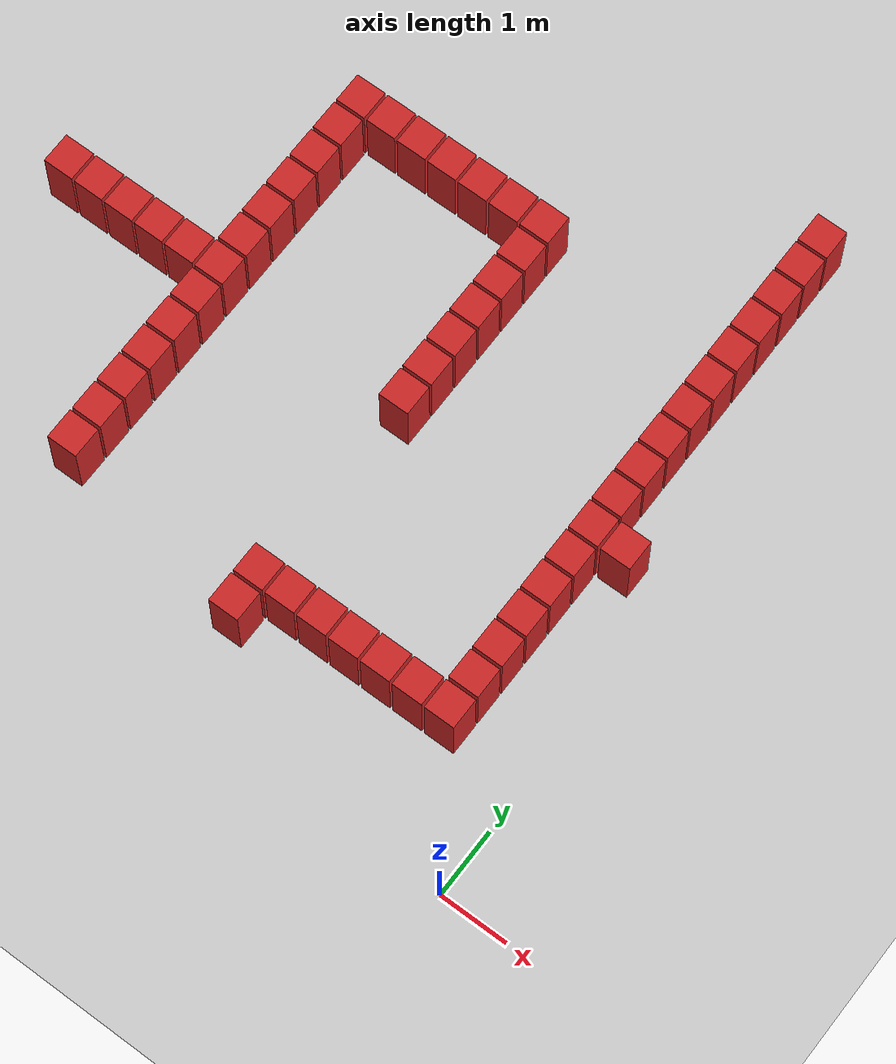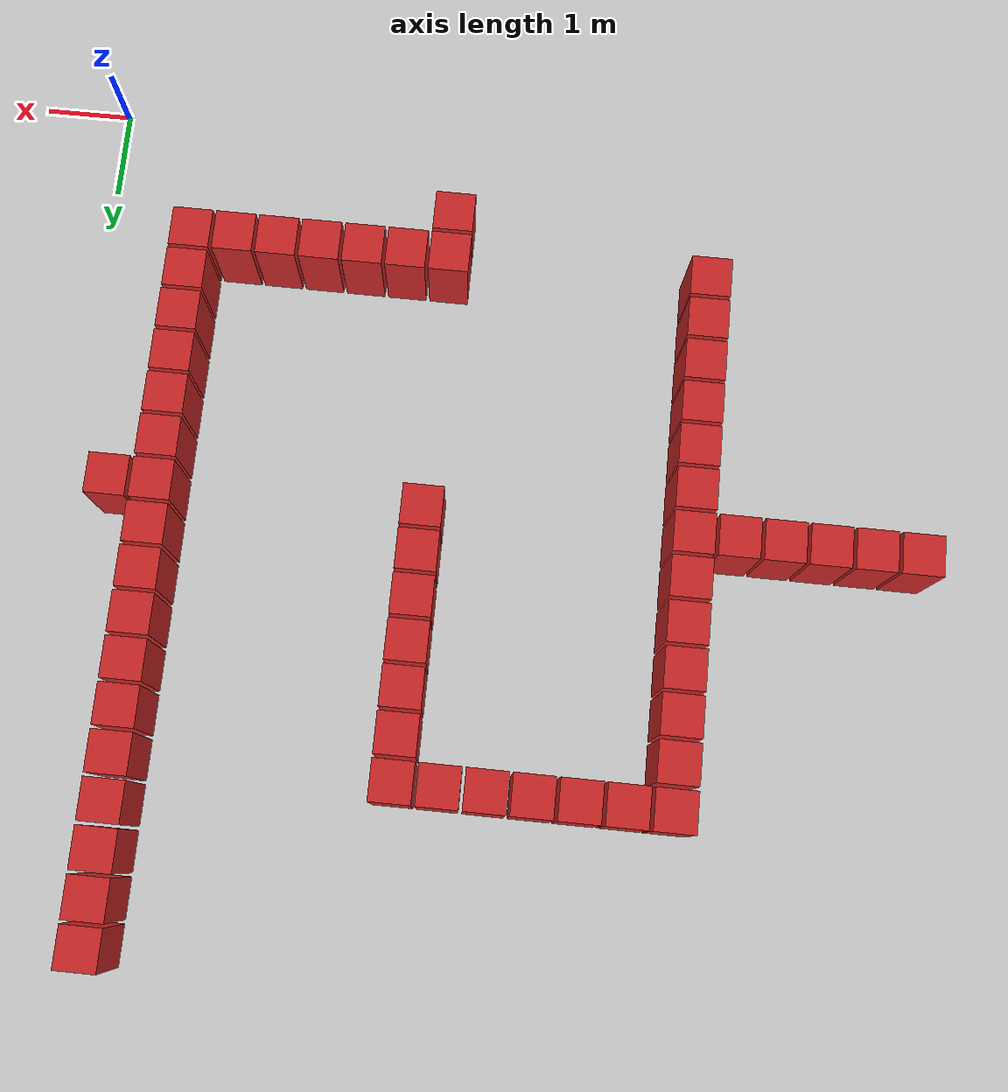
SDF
<sdf version="1.6">
 <world name="default">
  <model name="ground_plane">
   <static>1</static>
   <link name="link">
    <collision name="collision">
     <geometry><plane><normal>0 0 1</normal><size>100 100</size></plane></geometry>
     <surface><friction><ode><mu>100</mu><mu2>50</mu2></ode></friction></surface>
    </collision>
    <visual name="visual">
     <cast_shadows>0</cast_shadows>
     <geometry><plane><normal>0 0 1</normal><size>100 100</size></plane></geometry>
     <material>
      <script><uri>file://media/materials/scripts/gazebo.material</uri><name>Gazebo/Grey</name></script>
     </material>
    </visual>
   </link>
  </model>
  <model name="box_obstacle0">
   <static>0</static>
   <link name="box_obstacle0">
    <pose>0 0 0.1 0 -0 0</pose>
    <inertial>
     <mass>100</mass>
     <inertia>
      <ixx>0.166667</ixx>
      <ixy>0</ixy>
      <ixz>0</ixz>
      <iyy>0.166667</iyy>
      <iyz>0</iyz>
      <izz>0.166667</izz>
     </inertia>
    </inertial>
    <collision name="collision"><geometry><box><size>0.45 0.45 1</size></box></geometry></collision>
    <visual name="visual">
     <geometry><box><size>0.45 0.45 1</size></box></geometry>
     <material>
      <script><name>Gazebo/Red</name><uri>file://media/materials/scripts/gazebo.material</uri></script>
     </material>
    </visual>
   </link>
   <pose>-9.51051 4.69876 0.4 0 5e-06 0.002247</pose>
  </model>
  <model name="box_obstacle1">
   <static>0</static>
   <link name="box_obstacle1">
    <pose>0 0 0.1 0 -0 0</pose>
    <inertial>
     <mass>100</mass>
     <inertia>
      <ixx>0.166667</ixx>
      <ixy>0</ixy>
      <ixz>0</ixz>
      <iyy>0.166667</iyy>
      <iyz>0</iyz>
      <izz>0.166667</izz>
     </inertia>
    </inertial>
    <collision name="collision"><geometry><box><size>0.45 0.45 1</size></box></geometry></collision>
    <visual name="visual">
     <geometry><box><size>0.45 0.45 1</size></box></geometry>
     <material>
      <script><name>Gazebo/Red</name><uri>file://media/materials/scripts/gazebo.material</uri></script>
     </material>
    </visual>
   </link>
   <pose>-9.02051 4.69876 0.4 0 5e-06 0.002247</pose>
  </model>
  <model name="box_obstacle2">
   <static>0</static>
   <link name="box_obstacle2">
    <pose>0 0 0.1 0 -0 0</pose>
    <inertial>
     <mass>100</mass>
     <inertia>
      <ixx>0.166667</ixx>
      <ixy>0</ixy>
      <ixz>0</ixz>
      <iyy>0.166667</iyy>
      <iyz>0</iyz>
      <izz>0.166667</izz>
     </inertia>
    </inertial>
    <collision name="collision"><geometry><box><size>0.45 0.45 1</size></box></geometry></collision>
    <visual name="visual">
     <geometry><box><size>0.45 0.45 1</size></box></geometry>
     <material>
      <script><name>Gazebo/Red</name><uri>file://media/materials/scripts/gazebo.material</uri></script>
     </material>
    </visual>
   </link>
   <pose>-8.53051 4.69876 0.4 0 5e-06 0.002247</pose>
  </model>
  <model name="box_obstacle3">
   <static>0</static>
   <link name="box_obstacle3">
    <pose>0 0 0.1 0 -0 0</pose>
    <inertial>
     <mass>100</mass>
     <inertia>
      <ixx>0.166667</ixx>
      <ixy>0</ixy>
      <ixz>0</ixz>
      <iyy>0.166667</iyy>
      <iyz>0</iyz>
      <izz>0.166667</izz>
     </inertia>
    </inertial>
    <collision name="collision"><geometry><box><size>0.45 0.45 1</size></box></geometry></collision>
    <visual name="visual">
     <geometry><box><size>0.45 0.45 1</size></box></geometry>
     <material>
      <script><name>Gazebo/Red</name><uri>file://media/materials/scripts/gazebo.material</uri></script>
     </material>
    </visual>
   </link>
   <pose>-8.04051 4.69876 0.4 0 5e-06 0.002247</pose>
  </model>
  <model name="box_obstacle4">
   <static>0</static>
   <link name="box_obstacle4">
    <pose>0 0 0.1 0 -0 0</pose>
    <inertial>
     <mass>100</mass>
     <inertia>
      <ixx>0.166667</ixx>
      <ixy>0</ixy>
      <ixz>0</ixz>
      <iyy>0.166667</iyy>
      <iyz>0</iyz>
      <izz>0.166667</izz>
     </inertia>
    </inertial>
    <collision name="collision"><geometry><box><size>0.45 0.45 1</size></box></geometry></collision>
    <visual name="visual">
     <geometry><box><size>0.45 0.45 1</size></box></geometry>
     <material>
      <script><name>Gazebo/Red</name><uri>file://media/materials/scripts/gazebo.material</uri></script>
     </material>
    </visual>
   </link>
   <pose>-7.55051 4.69876 0.4 0 5e-06 0.002247</pose>
  </model>
  <model name="box_obstacle18">
   <static>0</static>
   <link name="box_obstacle18">
    <pose>0 0 0.1 0 -0 0</pose>
    <inertial>
     <mass>100</mass>
     <inertia>
      <ixx>0.166667</ixx>
      <ixy>0</ixy>
      <ixz>0</ixz>
      <iyy>0.166667</iyy>
      <iyz>0</iyz>
      <izz>0.166667</izz>
     </inertia>
    </inertial>
    <collision name="collision"><geometry><box><size>0.45 0.45 1</size></box></geometry></collision>
    <visual name="visual">
     <geometry><box><size>0.45 0.45 1</size></box></geometry>
     <material>
      <script><name>Gazebo/Red</name><uri>file://media/materials/scripts/gazebo.material</uri></script>
     </material>
    </visual>
   </link>
   <pose>-7.06051 1.75876 0.4 0 5e-06 0.002247</pose>
  </model>
  <model name="box_obstacle19">
   <static>0</static>
   <link name="box_obstacle19">
    <pose>0 0 0.1 0 -0 0</pose>
    <inertial>
     <mass>100</mass>
     <inertia>
      <ixx>0.166667</ixx>
      <ixy>0</ixy>
      <ixz>0</ixz>
      <iyy>0.166667</iyy>
      <iyz>0</iyz>
      <izz>0.166667</izz>
     </inertia>
    </inertial>
    <collision name="collision"><geometry><box><size>0.45 0.45 1</size></box></geometry></collision>
    <visual name="visual">
     <geometry><box><size>0.45 0.45 1</size></box></geometry>
     <material>
      <script><name>Gazebo/Red</name><uri>file://media/materials/scripts/gazebo.material</uri></script>
     </material>
    </visual>
   </link>
   <pose>-7.06051 2.24876 0.4 0 5e-06 0.002247</pose>
  </model>
  <model name="box_obstacle20">
   <static>0</static>
   <link name="box_obstacle20">
    <pose>0 0 0.1 0 -0 0</pose>
    <inertial>
     <mass>100</mass>
     <inertia>
      <ixx>0.166667</ixx>
      <ixy>0</ixy>
      <ixz>0</ixz>
      <iyy>0.166667</iyy>
      <iyz>0</iyz>
      <izz>0.166667</izz>
     </inertia>
    </inertial>
    <collision name="collision"><geometry><box><size>0.45 0.45 1</size></box></geometry></collision>
    <visual name="visual">
     <geometry><box><size>0.45 0.45 1</size></box></geometry>
     <material>
      <script><name>Gazebo/Red</name><uri>file://media/materials/scripts/gazebo.material</uri></script>
     </material>
    </visual>
   </link>
   <pose>-7.06051 2.73876 0.4 0 5e-06 0.002247</pose>
  </model>
  <model name="box_obstacle21">
   <static>0</static>
   <link name="box_obstacle21">
    <pose>0 0 0.1 0 -0 0</pose>
    <inertial>
     <mass>100</mass>
     <inertia>
      <ixx>0.166667</ixx>
      <ixy>0</ixy>
      <ixz>0</ixz>
      <iyy>0.166667</iyy>
      <iyz>0</iyz>
      <izz>0.166667</izz>
     </inertia>
    </inertial>
    <collision name="collision"><geometry><box><size>0.45 0.45 1</size></box></geometry></collision>
    <visual name="visual">
     <geometry><box><size>0.45 0.45 1</size></box></geometry>
     <material>
      <script><name>Gazebo/Red</name><uri>file://media/materials/scripts/gazebo.material</uri></script>
     </material>
    </visual>
   </link>
   <pose>-7.06051 3.22876 0.4 0 5e-06 0.002247</pose>
  </model>
  <model name="box_obstacle22">
   <static>0</static>
   <link name="box_obstacle22">
    <pose>0 0 0.1 0 -0 0</pose>
    <inertial>
     <mass>100</mass>
     <inertia>
      <ixx>0.166667</ixx>
      <ixy>0</ixy>
      <ixz>0</ixz>
      <iyy>0.166667</iyy>
      <iyz>0</iyz>
      <izz>0.166667</izz>
     </inertia>
    </inertial>
    <collision name="collision"><geometry><box><size>0.45 0.45 1</size></box></geometry></collision>
    <visual name="visual">
     <geometry><box><size>0.45 0.45 1</size></box></geometry>
     <material>
      <script><name>Gazebo/Red</name><uri>file://media/materials/scripts/gazebo.material</uri></script>
     </material>
    </visual>
   </link>
   <pose>-7.06051 3.71876 0.4 0 5e-06 0.002247</pose>
  </model>
  <model name="box_obstacle23">
   <static>0</static>
   <link name="box_obstacle23">
    <pose>0 0 0.1 0 -0 0</pose>
    <inertial>
     <mass>100</mass>
     <inertia>
      <ixx>0.166667</ixx>
      <ixy>0</ixy>
      <ixz>0</ixz>
      <iyy>0.166667</iyy>
      <iyz>0</iyz>
      <izz>0.166667</izz>
     </inertia>
    </inertial>
    <collision name="collision"><geometry><box><size>0.45 0.45 1</size></box></geometry></collision>
    <visual name="visual">
     <geometry><box><size>0.45 0.45 1</size></box></geometry>
     <material>
      <script><name>Gazebo/Red</name><uri>file://media/materials/scripts/gazebo.material</uri></script>
     </material>
    </visual>
   </link>
   <pose>-7.06051 4.20876 0.4 0 5e-06 0.002247</pose>
  </model>
  <model name="box_obstacle24">
   <static>0</static>
   <link name="box_obstacle24">
    <pose>0 0 0.1 0 -0 0</pose>
    <inertial>
     <mass>100</mass>
     <inertia>
      <ixx>0.166667</ixx>
      <ixy>0</ixy>
      <ixz>0</ixz>
      <iyy>0.166667</iyy>
      <iyz>0</iyz>
      <izz>0.166667</izz>
     </inertia>
    </inertial>
    <collision name="collision"><geometry><box><size>0.45 0.45 1</size></box></geometry></collision>
    <visual name="visual">
     <geometry><box><size>0.45 0.45 1</size></box></geometry>
     <material>
      <script><name>Gazebo/Red</name><uri>file://media/materials/scripts/gazebo.material</uri></script>
     </material>
    </visual>
   </link>
   <pose>-7.06051 4.69876 0.4 0 5e-06 0.002247</pose>
  </model>
  <model name="box_obstacle25">
   <static>0</static>
   <link name="box_obstacle25">
    <pose>0 0 0.1 0 -0 0</pose>
    <inertial>
     <mass>100</mass>
     <inertia>
      <ixx>0.166667</ixx>
      <ixy>0</ixy>
      <ixz>0</ixz>
      <iyy>0.166667</iyy>
      <iyz>0</iyz>
      <izz>0.166667</izz>
     </inertia>
    </inertial>
    <collision name="collision"><geometry><box><size>0.45 0.45 1</size></box></geometry></collision>
    <visual name="visual">
     <geometry><box><size>0.45 0.45 1</size></box></geometry>
     <material>
      <script><name>Gazebo/Red</name><uri>file://media/materials/scripts/gazebo.material</uri></script>
     </material>
    </visual>
   </link>
   <pose>-7.06051 5.18876 0.4 0 5e-06 0.002247</pose>
  </model>
  <model name="box_obstacle26">
   <static>0</static>
   <link name="box_obstacle26">
    <pose>0 0 0.1 0 -0 0</pose>
    <inertial>
     <mass>100</mass>
     <inertia>
      <ixx>0.166667</ixx>
      <ixy>0</ixy>
      <ixz>0</ixz>
      <iyy>0.166667</iyy>
      <iyz>0</iyz>
      <izz>0.166667</izz>
     </inertia>
    </inertial>
    <collision name="collision"><geometry><box><size>0.45 0.45 1</size></box></geometry></collision>
    <visual name="visual">
     <geometry><box><size>0.45 0.45 1</size></box></geometry>
     <material>
      <script><name>Gazebo/Red</name><uri>file://media/materials/scripts/gazebo.material</uri></script>
     </material>
    </visual>
   </link>
   <pose>-7.06051 5.67876 0.4 0 5e-06 0.002247</pose>
  </model>
  <model name="box_obstacle27">
   <static>0</static>
   <link name="box_obstacle27">
    <pose>0 0 0.1 0 -0 0</pose>
    <inertial>
     <mass>100</mass>
     <inertia>
      <ixx>0.166667</ixx>
      <ixy>0</ixy>
      <ixz>0</ixz>
      <iyy>0.166667</iyy>
      <iyz>0</iyz>
      <izz>0.166667</izz>
     </inertia>
    </inertial>
    <collision name="collision"><geometry><box><size>0.45 0.45 1</size></box></geometry></collision>
    <visual name="visual">
     <geometry><box><size>0.45 0.45 1</size></box></geometry>
     <material>
      <script><name>Gazebo/Red</name><uri>file://media/materials/scripts/gazebo.material</uri></script>
     </material>
    </visual>
   </link>
   <pose>-7.06051 6.16876 0.4 0 5e-06 0.002247</pose>
  </model>
  <model name="box_obstacle28">
   <static>0</static>
   <link name="box_obstacle28">
    <pose>0 0 0.1 0 -0 0</pose>
    <inertial>
     <mass>100</mass>
     <inertia>
      <ixx>0.166667</ixx>
      <ixy>0</ixy>
      <ixz>0</ixz>
      <iyy>0.166667</iyy>
      <iyz>0</iyz>
      <izz>0.166667</izz>
     </inertia>
    </inertial>
    <collision name="collision"><geometry><box><size>0.45 0.45 1</size></box></geometry></collision>
    <visual name="visual">
     <geometry><box><size>0.45 0.45 1</size></box></geometry>
     <material>
      <script><name>Gazebo/Red</name><uri>file://media/materials/scripts/gazebo.material</uri></script>
     </material>
    </visual>
   </link>
   <pose>-7.06051 6.65876 0.4 0 5e-06 0.002247</pose>
  </model>
  <model name="box_obstacle29">
   <static>0</static>
   <link name="box_obstacle29">
    <pose>0 0 0.1 0 -0 0</pose>
    <inertial>
     <mass>100</mass>
     <inertia>
      <ixx>0.166667</ixx>
      <ixy>0</ixy>
      <ixz>0</ixz>
      <iyy>0.166667</iyy>
      <iyz>0</iyz>
      <izz>0.166667</izz>
     </inertia>
    </inertial>
    <collision name="collision"><geometry><box><size>0.45 0.45 1</size></box></geometry></collision>
    <visual name="visual">
     <geometry><box><size>0.45 0.45 1</size></box></geometry>
     <material>
      <script><name>Gazebo/Red</name><uri>file://media/materials/scripts/gazebo.material</uri></script>
     </material>
    </visual>
   </link>
   <pose>-7.06051 7.14876 0.4 0 5e-06 0.002247</pose>
  </model>
  <model name="box_obstacle30">
   <static>0</static>
   <link name="box_obstacle30">
    <pose>0 0 0.1 0 -0 0</pose>
    <inertial>
     <mass>100</mass>
     <inertia>
      <ixx>0.166667</ixx>
      <ixy>0</ixy>
      <ixz>0</ixz>
      <iyy>0.166667</iyy>
      <iyz>0</iyz>
      <izz>0.166667</izz>
     </inertia>
    </inertial>
    <collision name="collision"><geometry><box><size>0.45 0.45 1</size></box></geometry></collision>
    <visual name="visual">
     <geometry><box><size>0.45 0.45 1</size></box></geometry>
     <material>
      <script><name>Gazebo/Red</name><uri>file://media/materials/scripts/gazebo.material</uri></script>
     </material>
    </visual>
   </link>
   <pose>-7.06051 7.63876 0.4 0 5e-06 0.002247</pose>
  </model>
  <model name="box_obstacle33">
   <static>0</static>
   <link name="box_obstacle33">
    <pose>0 0 0.1 0 -0 0</pose>
    <inertial>
     <mass>100</mass>
     <inertia>
      <ixx>0.166667</ixx>
      <ixy>0</ixy>
      <ixz>0</ixz>
      <iyy>0.166667</iyy>
      <iyz>0</iyz>
      <izz>0.166667</izz>
     </inertia>
    </inertial>
    <collision name="collision"><geometry><box><size>0.45 0.45 1</size></box></geometry></collision>
    <visual name="visual">
     <geometry><box><size>0.45 0.45 1</size></box></geometry>
     <material>
      <script><name>Gazebo/Red</name><uri>file://media/materials/scripts/gazebo.material</uri></script>
     </material>
    </visual>
   </link>
   <pose>-6.57051 7.63876 0.4 0 5e-06 0.002247</pose>
  </model>
  <model name="box_obstacle36">
   <static>0</static>
   <link name="box_obstacle36">
    <pose>0 0 0.1 0 -0 0</pose>
    <inertial>
     <mass>100</mass>
     <inertia>
      <ixx>0.166667</ixx>
      <ixy>0</ixy>
      <ixz>0</ixz>
      <iyy>0.166667</iyy>
      <iyz>0</iyz>
      <izz>0.166667</izz>
     </inertia>
    </inertial>
    <collision name="collision"><geometry><box><size>0.45 0.45 1</size></box></geometry></collision>
    <visual name="visual">
     <geometry><box><size>0.45 0.45 1</size></box></geometry>
     <material>
      <script><name>Gazebo/Red</name><uri>file://media/materials/scripts/gazebo.material</uri></script>
     </material>
    </visual>
   </link>
   <pose>-6.08051 7.63876 0.4 0 5e-06 0.002247</pose>
  </model>
  <model name="box_obstacle39">
   <static>0</static>
   <link name="box_obstacle39">
    <pose>0 0 0.1 0 -0 0</pose>
    <inertial>
     <mass>100</mass>
     <inertia>
      <ixx>0.166667</ixx>
      <ixy>0</ixy>
      <ixz>0</ixz>
      <iyy>0.166667</iyy>
      <iyz>0</iyz>
      <izz>0.166667</izz>
     </inertia>
    </inertial>
    <collision name="collision"><geometry><box><size>0.45 0.45 1</size></box></geometry></collision>
    <visual name="visual">
     <geometry><box><size>0.45 0.45 1</size></box></geometry>
     <material>
      <script><name>Gazebo/Red</name><uri>file://media/materials/scripts/gazebo.material</uri></script>
     </material>
    </visual>
   </link>
   <pose>-5.59051 7.63876 0.4 0 5e-06 0.002247</pose>
  </model>
  <model name="box_obstacle42">
   <static>0</static>
   <link name="box_obstacle42">
    <pose>0 0 0.1 0 -0 0</pose>
    <inertial>
     <mass>100</mass>
     <inertia>
      <ixx>0.166667</ixx>
      <ixy>0</ixy>
      <ixz>0</ixz>
      <iyy>0.166667</iyy>
      <iyz>0</iyz>
      <izz>0.166667</izz>
     </inertia>
    </inertial>
    <collision name="collision"><geometry><box><size>0.45 0.45 1</size></box></geometry></collision>
    <visual name="visual">
     <geometry><box><size>0.45 0.45 1</size></box></geometry>
     <material>
      <script><name>Gazebo/Red</name><uri>file://media/materials/scripts/gazebo.material</uri></script>
     </material>
    </visual>
   </link>
   <pose>-5.10051 7.63876 0.4 0 5e-06 0.002247</pose>
  </model>
  <model name="box_obstacle45">
   <static>0</static>
   <link name="box_obstacle45">
    <pose>0 0 0.1 0 -0 0</pose>
    <inertial>
     <mass>100</mass>
     <inertia>
      <ixx>0.166667</ixx>
      <ixy>0</ixy>
      <ixz>0</ixz>
      <iyy>0.166667</iyy>
      <iyz>0</iyz>
      <izz>0.166667</izz>
     </inertia>
    </inertial>
    <collision name="collision"><geometry><box><size>0.45 0.45 1</size></box></geometry></collision>
    <visual name="visual">
     <geometry><box><size>0.45 0.45 1</size></box></geometry>
     <material>
      <script><name>Gazebo/Red</name><uri>file://media/materials/scripts/gazebo.material</uri></script>
     </material>
    </visual>
   </link>
   <pose>-4.61051 7.63876 0.4 0 5e-06 0.002247</pose>
  </model>
  <model name="box_obstacle58">
   <static>0</static>
   <link name="box_obstacle58">
    <pose>0 0 0.1 0 -0 0</pose>
    <inertial>
     <mass>100</mass>
     <inertia>
      <ixx>0.166667</ixx>
      <ixy>0</ixy>
      <ixz>0</ixz>
      <iyy>0.166667</iyy>
      <iyz>0</iyz>
      <izz>0.166667</izz>
     </inertia>
    </inertial>
    <collision name="collision"><geometry><box><size>0.45 0.45 1</size></box></geometry></collision>
    <visual name="visual">
     <geometry><box><size>0.45 0.45 1</size></box></geometry>
     <material>
      <script><name>Gazebo/Red</name><uri>file://media/materials/scripts/gazebo.material</uri></script>
     </material>
    </visual>
   </link>
   <pose>-4.12051 1.26876 0.4 0 5e-06 0.002247</pose>
  </model>
  <model name="box_obstacle59">
   <static>0</static>
   <link name="box_obstacle59">
    <pose>0 0 0.1 0 -0 0</pose>
    <inertial>
     <mass>100</mass>
     <inertia>
      <ixx>0.166667</ixx>
      <ixy>0</ixy>
      <ixz>0</ixz>
      <iyy>0.166667</iyy>
      <iyz>0</iyz>
      <izz>0.166667</izz>
     </inertia>
    </inertial>
    <collision name="collision"><geometry><box><size>0.45 0.45 1</size></box></geometry></collision>
    <visual name="visual">
     <geometry><box><size>0.45 0.45 1</size></box></geometry>
     <material>
      <script><name>Gazebo/Red</name><uri>file://media/materials/scripts/gazebo.material</uri></script>
     </material>
    </visual>
   </link>
   <pose>-4.12051 1.75876 0.4 0 5e-06 0.002247</pose>
  </model>
  <model name="box_obstacle60">
   <static>0</static>
   <link name="box_obstacle60">
    <pose>0 0 0.1 0 -0 0</pose>
    <inertial>
     <mass>100</mass>
     <inertia>
      <ixx>0.166667</ixx>
      <ixy>0</ixy>
      <ixz>0</ixz>
      <iyy>0.166667</iyy>
      <iyz>0</iyz>
      <izz>0.166667</izz>
     </inertia>
    </inertial>
    <collision name="collision"><geometry><box><size>0.45 0.45 1</size></box></geometry></collision>
    <visual name="visual">
     <geometry><box><size>0.45 0.45 1</size></box></geometry>
     <material>
      <script><name>Gazebo/Red</name><uri>file://media/materials/scripts/gazebo.material</uri></script>
     </material>
    </visual>
   </link>
   <pose>-4.12051 4.69876 0.4 0 5e-06 0.002247</pose>
  </model>
  <model name="box_obstacle61">
   <static>0</static>
   <link name="box_obstacle61">
    <pose>0 0 0.1 0 -0 0</pose>
    <inertial>
     <mass>100</mass>
     <inertia>
      <ixx>0.166667</ixx>
      <ixy>0</ixy>
      <ixz>0</ixz>
      <iyy>0.166667</iyy>
      <iyz>0</iyz>
      <izz>0.166667</izz>
     </inertia>
    </inertial>
    <collision name="collision"><geometry><box><size>0.45 0.45 1</size></box></geometry></collision>
    <visual name="visual">
     <geometry><box><size>0.45 0.45 1</size></box></geometry>
     <material>
      <script><name>Gazebo/Red</name><uri>file://media/materials/scripts/gazebo.material</uri></script>
     </material>
    </visual>
   </link>
   <pose>-4.12051 5.18876 0.4 0 5e-06 0.002247</pose>
  </model>
  <model name="box_obstacle62">
   <static>0</static>
   <link name="box_obstacle62">
    <pose>0 0 0.1 0 -0 0</pose>
    <inertial>
     <mass>100</mass>
     <inertia>
      <ixx>0.166667</ixx>
      <ixy>0</ixy>
      <ixz>0</ixz>
      <iyy>0.166667</iyy>
      <iyz>0</iyz>
      <izz>0.166667</izz>
     </inertia>
    </inertial>
    <collision name="collision"><geometry><box><size>0.45 0.45 1</size></box></geometry></collision>
    <visual name="visual">
     <geometry><box><size>0.45 0.45 1</size></box></geometry>
     <material>
      <script><name>Gazebo/Red</name><uri>file://media/materials/scripts/gazebo.material</uri></script>
     </material>
    </visual>
   </link>
   <pose>-4.12051 5.67876 0.4 0 5e-06 0.002247</pose>
  </model>
  <model name="box_obstacle63">
   <static>0</static>
   <link name="box_obstacle63">
    <pose>0 0 0.1 0 -0 0</pose>
    <inertial>
     <mass>100</mass>
     <inertia>
      <ixx>0.166667</ixx>
      <ixy>0</ixy>
      <ixz>0</ixz>
      <iyy>0.166667</iyy>
      <iyz>0</iyz>
      <izz>0.166667</izz>
     </inertia>
    </inertial>
    <collision name="collision"><geometry><box><size>0.45 0.45 1</size></box></geometry></collision>
    <visual name="visual">
     <geometry><box><size>0.45 0.45 1</size></box></geometry>
     <material>
      <script><name>Gazebo/Red</name><uri>file://media/materials/scripts/gazebo.material</uri></script>
     </material>
    </visual>
   </link>
   <pose>-4.12051 6.16876 0.4 0 5e-06 0.002247</pose>
  </model>
  <model name="box_obstacle64">
   <static>0</static>
   <link name="box_obstacle64">
    <pose>0 0 0.1 0 -0 0</pose>
    <inertial>
     <mass>100</mass>
     <inertia>
      <ixx>0.166667</ixx>
      <ixy>0</ixy>
      <ixz>0</ixz>
      <iyy>0.166667</iyy>
      <iyz>0</iyz>
      <izz>0.166667</izz>
     </inertia>
    </inertial>
    <collision name="collision"><geometry><box><size>0.45 0.45 1</size></box></geometry></collision>
    <visual name="visual">
     <geometry><box><size>0.45 0.45 1</size></box></geometry>
     <material>
      <script><name>Gazebo/Red</name><uri>file://media/materials/scripts/gazebo.material</uri></script>
     </material>
    </visual>
   </link>
   <pose>-4.12051 6.65876 0.4 0 5e-06 0.002247</pose>
  </model>
  <model name="box_obstacle65">
   <static>0</static>
   <link name="box_obstacle65">
    <pose>0 0 0.1 0 -0 0</pose>
    <inertial>
     <mass>100</mass>
     <inertia>
      <ixx>0.166667</ixx>
      <ixy>0</ixy>
      <ixz>0</ixz>
      <iyy>0.166667</iyy>
      <iyz>0</iyz>
      <izz>0.166667</izz>
     </inertia>
    </inertial>
    <collision name="collision"><geometry><box><size>0.45 0.45 1</size></box></geometry></collision>
    <visual name="visual">
     <geometry><box><size>0.45 0.45 1</size></box></geometry>
     <material>
      <script><name>Gazebo/Red</name><uri>file://media/materials/scripts/gazebo.material</uri></script>
     </material>
    </visual>
   </link>
   <pose>-4.12051 7.14876 0.4 0 5e-06 0.002247</pose>
  </model>
  <model name="box_obstacle66">
   <static>0</static>
   <link name="box_obstacle66">
    <pose>0 0 0.1 0 -0 0</pose>
    <inertial>
     <mass>100</mass>
     <inertia>
      <ixx>0.166667</ixx>
      <ixy>0</ixy>
      <ixz>0</ixz>
      <iyy>0.166667</iyy>
      <iyz>0</iyz>
      <izz>0.166667</izz>
     </inertia>
    </inertial>
    <collision name="collision"><geometry><box><size>0.45 0.45 1</size></box></geometry></collision>
    <visual name="visual">
     <geometry><box><size>0.45 0.45 1</size></box></geometry>
     <material>
      <script><name>Gazebo/Red</name><uri>file://media/materials/scripts/gazebo.material</uri></script>
     </material>
    </visual>
   </link>
   <pose>-4.12051 7.63876 0.4 0 5e-06 0.002247</pose>
  </model>
  <model name="box_obstacle69">
   <static>0</static>
   <link name="box_obstacle69">
    <pose>0 0 0.1 0 -0 0</pose>
    <inertial>
     <mass>100</mass>
     <inertia>
      <ixx>0.166667</ixx>
      <ixy>0</ixy>
      <ixz>0</ixz>
      <iyy>0.166667</iyy>
      <iyz>0</iyz>
      <izz>0.166667</izz>
     </inertia>
    </inertial>
    <collision name="collision"><geometry><box><size>0.45 0.45 1</size></box></geometry></collision>
    <visual name="visual">
     <geometry><box><size>0.45 0.45 1</size></box></geometry>
     <material>
      <script><name>Gazebo/Red</name><uri>file://media/materials/scripts/gazebo.material</uri></script>
     </material>
    </visual>
   </link>
   <pose>-3.63051 1.75876 0.4 0 5e-06 0.002247</pose>
  </model>
  <model name="box_obstacle72">
   <static>0</static>
   <link name="box_obstacle72">
    <pose>0 0 0.1 0 -0 0</pose>
    <inertial>
     <mass>100</mass>
     <inertia>
      <ixx>0.166667</ixx>
      <ixy>0</ixy>
      <ixz>0</ixz>
      <iyy>0.166667</iyy>
      <iyz>0</iyz>
      <izz>0.166667</izz>
     </inertia>
    </inertial>
    <collision name="collision"><geometry><box><size>0.45 0.45 1</size></box></geometry></collision>
    <visual name="visual">
     <geometry><box><size>0.45 0.45 1</size></box></geometry>
     <material>
      <script><name>Gazebo/Red</name><uri>file://media/materials/scripts/gazebo.material</uri></script>
     </material>
    </visual>
   </link>
   <pose>-3.14051 1.75876 0.4 0 5e-06 0.002247</pose>
  </model>
  <model name="box_obstacle75">
   <static>0</static>
   <link name="box_obstacle75">
    <pose>0 0 0.1 0 -0 0</pose>
    <inertial>
     <mass>100</mass>
     <inertia>
      <ixx>0.166667</ixx>
      <ixy>0</ixy>
      <ixz>0</ixz>
      <iyy>0.166667</iyy>
      <iyz>0</iyz>
      <izz>0.166667</izz>
     </inertia>
    </inertial>
    <collision name="collision"><geometry><box><size>0.45 0.45 1</size></box></geometry></collision>
    <visual name="visual">
     <geometry><box><size>0.45 0.45 1</size></box></geometry>
     <material>
      <script><name>Gazebo/Red</name><uri>file://media/materials/scripts/gazebo.material</uri></script>
     </material>
    </visual>
   </link>
   <pose>-2.65051 1.75876 0.4 0 5e-06 0.002247</pose>
  </model>
  <model name="box_obstacle78">
   <static>0</static>
   <link name="box_obstacle78">
    <pose>0 0 0.1 0 -0 0</pose>
    <inertial>
     <mass>100</mass>
     <inertia>
      <ixx>0.166667</ixx>
      <ixy>0</ixy>
      <ixz>0</ixz>
      <iyy>0.166667</iyy>
      <iyz>0</iyz>
      <izz>0.166667</izz>
     </inertia>
    </inertial>
    <collision name="collision"><geometry><box><size>0.45 0.45 1</size></box></geometry></collision>
    <visual name="visual">
     <geometry><box><size>0.45 0.45 1</size></box></geometry>
     <material>
      <script><name>Gazebo/Red</name><uri>file://media/materials/scripts/gazebo.material</uri></script>
     </material>
    </visual>
   </link>
   <pose>-2.16051 1.75876 0.4 0 5e-06 0.002247</pose>
  </model>
  <model name="box_obstacle81">
   <static>0</static>
   <link name="box_obstacle81">
    <pose>0 0 0.1 0 -0 0</pose>
    <inertial>
     <mass>100</mass>
     <inertia>
      <ixx>0.166667</ixx>
      <ixy>0</ixy>
      <ixz>0</ixz>
      <iyy>0.166667</iyy>
      <iyz>0</iyz>
      <izz>0.166667</izz>
     </inertia>
    </inertial>
    <collision name="collision"><geometry><box><size>0.45 0.45 1</size></box></geometry></collision>
    <visual name="visual">
     <geometry><box><size>0.45 0.45 1</size></box></geometry>
     <material>
      <script><name>Gazebo/Red</name><uri>file://media/materials/scripts/gazebo.material</uri></script>
     </material>
    </visual>
   </link>
   <pose>-1.67051 1.75876 0.4 0 5e-06 0.002247</pose>
  </model>
  <model name="box_obstacle90">
   <static>0</static>
   <link name="box_obstacle90">
    <pose>0 0 0.1 0 -0 0</pose>
    <inertial>
     <mass>100</mass>
     <inertia>
      <ixx>0.166667</ixx>
      <ixy>0</ixy>
      <ixz>0</ixz>
      <iyy>0.166667</iyy>
      <iyz>0</iyz>
      <izz>0.166667</izz>
     </inertia>
    </inertial>
    <collision name="collision"><geometry><box><size>0.45 0.45 1</size></box></geometry></collision>
    <visual name="visual">
     <geometry><box><size>0.45 0.45 1</size></box></geometry>
     <material>
      <script><name>Gazebo/Red</name><uri>file://media/materials/scripts/gazebo.material</uri></script>
     </material>
    </visual>
   </link>
   <pose>-1.18051 1.75876 0.4 0 5e-06 0.002247</pose>
  </model>
  <model name="box_obstacle91">
   <static>0</static>
   <link name="box_obstacle91">
    <pose>0 0 0.1 0 -0 0</pose>
    <inertial>
     <mass>100</mass>
     <inertia>
      <ixx>0.166667</ixx>
      <ixy>0</ixy>
      <ixz>0</ixz>
      <iyy>0.166667</iyy>
      <iyz>0</iyz>
      <izz>0.166667</izz>
     </inertia>
    </inertial>
    <collision name="collision"><geometry><box><size>0.45 0.45 1</size></box></geometry></collision>
    <visual name="visual">
     <geometry><box><size>0.45 0.45 1</size></box></geometry>
     <material>
      <script><name>Gazebo/Red</name><uri>file://media/materials/scripts/gazebo.material</uri></script>
     </material>
    </visual>
   </link>
   <pose>-1.18051 2.24876 0.4 0 5e-06 0.002247</pose>
  </model>
  <model name="box_obstacle92">
   <static>0</static>
   <link name="box_obstacle92">
    <pose>0 0 0.1 0 -0 0</pose>
    <inertial>
     <mass>100</mass>
     <inertia>
      <ixx>0.166667</ixx>
      <ixy>0</ixy>
      <ixz>0</ixz>
      <iyy>0.166667</iyy>
      <iyz>0</iyz>
      <izz>0.166667</izz>
     </inertia>
    </inertial>
    <collision name="collision"><geometry><box><size>0.45 0.45 1</size></box></geometry></collision>
    <visual name="visual">
     <geometry><box><size>0.45 0.45 1</size></box></geometry>
     <material>
      <script><name>Gazebo/Red</name><uri>file://media/materials/scripts/gazebo.material</uri></script>
     </material>
    </visual>
   </link>
   <pose>-1.18051 2.73876 0.4 0 5e-06 0.002247</pose>
  </model>
  <model name="box_obstacle93">
   <static>0</static>
   <link name="box_obstacle93">
    <pose>0 0 0.1 0 -0 0</pose>
    <inertial>
     <mass>100</mass>
     <inertia>
      <ixx>0.166667</ixx>
      <ixy>0</ixy>
      <ixz>0</ixz>
      <iyy>0.166667</iyy>
      <iyz>0</iyz>
      <izz>0.166667</izz>
     </inertia>
    </inertial>
    <collision name="collision"><geometry><box><size>0.45 0.45 1</size></box></geometry></collision>
    <visual name="visual">
     <geometry><box><size>0.45 0.45 1</size></box></geometry>
     <material>
      <script><name>Gazebo/Red</name><uri>file://media/materials/scripts/gazebo.material</uri></script>
     </material>
    </visual>
   </link>
   <pose>-1.18051 3.22876 0.4 0 5e-06 0.002247</pose>
  </model>
  <model name="box_obstacle94">
   <static>0</static>
   <link name="box_obstacle94">
    <pose>0 0 0.1 0 -0 0</pose>
    <inertial>
     <mass>100</mass>
     <inertia>
      <ixx>0.166667</ixx>
      <ixy>0</ixy>
      <ixz>0</ixz>
      <iyy>0.166667</iyy>
      <iyz>0</iyz>
      <izz>0.166667</izz>
     </inertia>
    </inertial>
    <collision name="collision"><geometry><box><size>0.45 0.45 1</size></box></geometry></collision>
    <visual name="visual">
     <geometry><box><size>0.45 0.45 1</size></box></geometry>
     <material>
      <script><name>Gazebo/Red</name><uri>file://media/materials/scripts/gazebo.material</uri></script>
     </material>
    </visual>
   </link>
   <pose>-1.18051 3.71876 0.4 0 5e-06 0.002247</pose>
  </model>
  <model name="box_obstacle95">
   <static>0</static>
   <link name="box_obstacle95">
    <pose>0 0 0.1 0 -0 0</pose>
    <inertial>
     <mass>100</mass>
     <inertia>
      <ixx>0.166667</ixx>
      <ixy>0</ixy>
      <ixz>0</ixz>
      <iyy>0.166667</iyy>
      <iyz>0</iyz>
      <izz>0.166667</izz>
     </inertia>
    </inertial>
    <collision name="collision"><geometry><box><size>0.45 0.45 1</size></box></geometry></collision>
    <visual name="visual">
     <geometry><box><size>0.45 0.45 1</size></box></geometry>
     <material>
      <script><name>Gazebo/Red</name><uri>file://media/materials/scripts/gazebo.material</uri></script>
     </material>
    </visual>
   </link>
   <pose>-1.18 4.20862 0.400001 9e-06 -1e-06 0.002629</pose>
  </model>
  <model name="box_obstacle96">
   <static>0</static>
   <link name="box_obstacle96">
    <pose>0 0 0.1 0 -0 0</pose>
    <inertial>
     <mass>100</mass>
     <inertia>
      <ixx>0.166667</ixx>
      <ixy>0</ixy>
      <ixz>0</ixz>
      <iyy>0.166667</iyy>
      <iyz>0</iyz>
      <izz>0.166667</izz>
     </inertia>
    </inertial>
    <collision name="collision"><geometry><box><size>0.45 0.45 1</size></box></geometry></collision>
    <visual name="visual">
     <geometry><box><size>0.45 0.45 1</size></box></geometry>
     <material>
      <script><name>Gazebo/Red</name><uri>file://media/materials/scripts/gazebo.material</uri></script>
     </material>
    </visual>
   </link>
   <pose>-1.18051 4.69876 0.4 0 5e-06 0.002247</pose>
  </model>
  <model name="box_obstacle97">
   <static>0</static>
   <link name="box_obstacle97">
    <pose>0 0 0.1 0 -0 0</pose>
    <inertial>
     <mass>100</mass>
     <inertia>
      <ixx>0.166667</ixx>
      <ixy>0</ixy>
      <ixz>0</ixz>
      <iyy>0.166667</iyy>
      <iyz>0</iyz>
      <izz>0.166667</izz>
     </inertia>
    </inertial>
    <collision name="collision"><geometry><box><size>0.45 0.45 1</size></box></geometry></collision>
    <visual name="visual">
     <geometry><box><size>0.45 0.45 1</size></box></geometry>
     <material>
      <script><name>Gazebo/Red</name><uri>file://media/materials/scripts/gazebo.material</uri></script>
     </material>
    </visual>
   </link>
   <pose>-1.18051 5.18876 0.4 0 5e-06 0.002247</pose>
  </model>
  <model name="box_obstacle98">
   <static>0</static>
   <link name="box_obstacle98">
    <pose>0 0 0.1 0 -0 0</pose>
    <inertial>
     <mass>100</mass>
     <inertia>
      <ixx>0.166667</ixx>
      <ixy>0</ixy>
      <ixz>0</ixz>
      <iyy>0.166667</iyy>
      <iyz>0</iyz>
      <izz>0.166667</izz>
     </inertia>
    </inertial>
    <collision name="collision"><geometry><box><size>0.45 0.45 1</size></box></geometry></collision>
    <visual name="visual">
     <geometry><box><size>0.45 0.45 1</size></box></geometry>
     <material>
      <script><name>Gazebo/Red</name><uri>file://media/materials/scripts/gazebo.material</uri></script>
     </material>
    </visual>
   </link>
   <pose>-1.18051 5.67876 0.4 0 5e-06 0.002247</pose>
  </model>
  <model name="box_obstacle99">
   <static>0</static>
   <link name="box_obstacle99">
    <pose>0 0 0.1 0 -0 0</pose>
    <inertial>
     <mass>100</mass>
     <inertia>
      <ixx>0.166667</ixx>
      <ixy>0</ixy>
      <ixz>0</ixz>
      <iyy>0.166667</iyy>
      <iyz>0</iyz>
      <izz>0.166667</izz>
     </inertia>
    </inertial>
    <collision name="collision"><geometry><box><size>0.45 0.45 1</size></box></geometry></collision>
    <visual name="visual">
     <geometry><box><size>0.45 0.45 1</size></box></geometry>
     <material>
      <script><name>Gazebo/Red</name><uri>file://media/materials/scripts/gazebo.material</uri></script>
     </material>
    </visual>
   </link>
   <pose>-1.18051 6.16876 0.4 0 5e-06 0.002247</pose>
  </model>
  <model name="box_obstacle100">
   <static>0</static>
   <link name="box_obstacle100">
    <pose>0 0 0.1 0 -0 0</pose>
    <inertial>
     <mass>100</mass>
     <inertia>
      <ixx>0.166667</ixx>
      <ixy>0</ixy>
      <ixz>0</ixz>
      <iyy>0.166667</iyy>
      <iyz>0</iyz>
      <izz>0.166667</izz>
     </inertia>
    </inertial>
    <collision name="collision"><geometry><box><size>0.45 0.45 1</size></box></geometry></collision>
    <visual name="visual">
     <geometry><box><size>0.45 0.45 1</size></box></geometry>
     <material>
      <script><name>Gazebo/Red</name><uri>file://media/materials/scripts/gazebo.material</uri></script>
     </material>
    </visual>
   </link>
   <pose>-1.18051 6.65876 0.4 0 5e-06 0.002247</pose>
  </model>
  <model name="box_obstacle101">
   <static>0</static>
   <link name="box_obstacle101">
    <pose>0 0 0.1 0 -0 0</pose>
    <inertial>
     <mass>100</mass>
     <inertia>
      <ixx>0.166667</ixx>
      <ixy>0</ixy>
      <ixz>0</ixz>
      <iyy>0.166667</iyy>
      <iyz>0</iyz>
      <izz>0.166667</izz>
     </inertia>
    </inertial>
    <collision name="collision"><geometry><box><size>0.45 0.45 1</size></box></geometry></collision>
    <visual name="visual">
     <geometry><box><size>0.45 0.45 1</size></box></geometry>
     <material>
      <script><name>Gazebo/Red</name><uri>file://media/materials/scripts/gazebo.material</uri></script>
     </material>
    </visual>
   </link>
   <pose>-1.18051 7.14876 0.4 0 5e-06 0.002247</pose>
  </model>
  <model name="box_obstacle102">
   <static>0</static>
   <link name="box_obstacle102">
    <pose>0 0 0.1 0 -0 0</pose>
    <inertial>
     <mass>100</mass>
     <inertia>
      <ixx>0.166667</ixx>
      <ixy>0</ixy>
      <ixz>0</ixz>
      <iyy>0.166667</iyy>
      <iyz>0</iyz>
      <izz>0.166667</izz>
     </inertia>
    </inertial>
    <collision name="collision"><geometry><box><size>0.45 0.45 1</size></box></geometry></collision>
    <visual name="visual">
     <geometry><box><size>0.45 0.45 1</size></box></geometry>
     <material>
      <script><name>Gazebo/Red</name><uri>file://media/materials/scripts/gazebo.material</uri></script>
     </material>
    </visual>
   </link>
   <pose>-1.18051 7.63876 0.4 0 5e-06 0.002247</pose>
  </model>
  <model name="box_obstacle103">
   <static>0</static>
   <link name="box_obstacle103">
    <pose>0 0 0.1 0 -0 0</pose>
    <inertial>
     <mass>100</mass>
     <inertia>
      <ixx>0.166667</ixx>
      <ixy>0</ixy>
      <ixz>0</ixz>
      <iyy>0.166667</iyy>
      <iyz>0</iyz>
      <izz>0.166667</izz>
     </inertia>
    </inertial>
    <collision name="collision"><geometry><box><size>0.45 0.45 1</size></box></geometry></collision>
    <visual name="visual">
     <geometry><box><size>0.45 0.45 1</size></box></geometry>
     <material>
      <script><name>Gazebo/Red</name><uri>file://media/materials/scripts/gazebo.material</uri></script>
     </material>
    </visual>
   </link>
   <pose>-1.18051 8.12876 0.4 0 5e-06 0.002247</pose>
  </model>
  <model name="box_obstacle104">
   <static>0</static>
   <link name="box_obstacle104">
    <pose>0 0 0.1 0 -0 0</pose>
    <inertial>
     <mass>100</mass>
     <inertia>
      <ixx>0.166667</ixx>
      <ixy>0</ixy>
      <ixz>0</ixz>
      <iyy>0.166667</iyy>
      <iyz>0</iyz>
      <izz>0.166667</izz>
     </inertia>
    </inertial>
    <collision name="collision"><geometry><box><size>0.45 0.45 1</size></box></geometry></collision>
    <visual name="visual">
     <geometry><box><size>0.45 0.45 1</size></box></geometry>
     <material>
      <script><name>Gazebo/Red</name><uri>file://media/materials/scripts/gazebo.material</uri></script>
     </material>
    </visual>
   </link>
   <pose>-1.18051 8.61876 0.4 0 5e-06 0.002247</pose>
  </model>
  <model name="box_obstacle105">
   <static>0</static>
   <link name="box_obstacle105">
    <pose>0 0 0.1 0 -0 0</pose>
    <inertial>
     <mass>100</mass>
     <inertia>
      <ixx>0.166667</ixx>
      <ixy>0</ixy>
      <ixz>0</ixz>
      <iyy>0.166667</iyy>
      <iyz>0</iyz>
      <izz>0.166667</izz>
     </inertia>
    </inertial>
    <collision name="collision"><geometry><box><size>0.45 0.45 1</size></box></geometry></collision>
    <visual name="visual">
     <geometry><box><size>0.45 0.45 1</size></box></geometry>
     <material>
      <script><name>Gazebo/Red</name><uri>file://media/materials/scripts/gazebo.material</uri></script>
     </material>
    </visual>
   </link>
   <pose>-1.18051 9.10876 0.4 0 5e-06 0.002247</pose>
  </model>
  <model name="box_obstacle106">
   <static>0</static>
   <link name="box_obstacle106">
    <pose>0 0 0.1 0 -0 0</pose>
    <inertial>
     <mass>100</mass>
     <inertia>
      <ixx>0.166667</ixx>
      <ixy>0</ixy>
      <ixz>0</ixz>
      <iyy>0.166667</iyy>
      <iyz>0</iyz>
      <izz>0.166667</izz>
     </inertia>
    </inertial>
    <collision name="collision"><geometry><box><size>0.45 0.45 1</size></box></geometry></collision>
    <visual name="visual">
     <geometry><box><size>0.45 0.45 1</size></box></geometry>
     <material>
      <script><name>Gazebo/Red</name><uri>file://media/materials/scripts/gazebo.material</uri></script>
     </material>
    </visual>
   </link>
   <pose>-1.18051 9.59876 0.4 0 5e-06 0.002247</pose>
  </model>
  <model name="box_obstacle108">
   <static>0</static>
   <link name="box_obstacle108">
    <pose>0 0 0.1 0 -0 0</pose>
    <inertial>
     <mass>100</mass>
     <inertia>
      <ixx>0.166667</ixx>
      <ixy>0</ixy>
      <ixz>0</ixz>
      <iyy>0.166667</iyy>
      <iyz>0</iyz>
      <izz>0.166667</izz>
     </inertia>
    </inertial>
    <collision name="collision"><geometry><box><size>0.45 0.45 1</size></box></geometry></collision>
    <visual name="visual">
     <geometry><box><size>0.45 0.45 1</size></box></geometry>
     <material>
      <script><name>Gazebo/Red</name><uri>file://media/materials/scripts/gazebo.material</uri></script>
     </material>
    </visual>
   </link>
   <pose>-0.690508 4.69876 0.4 0 5e-06 0.002247</pose>
  </model>
 </world>
</sdf>
